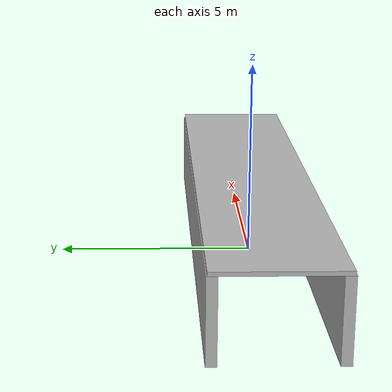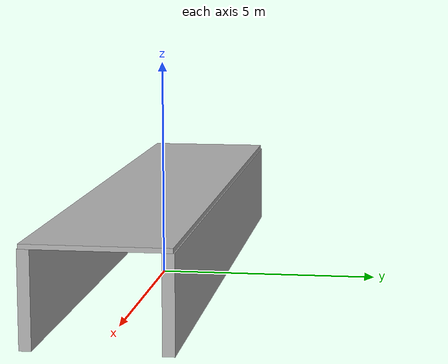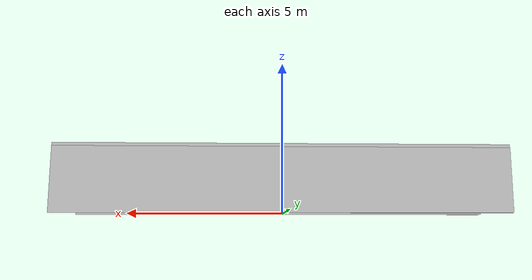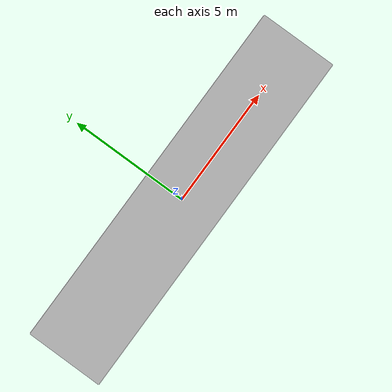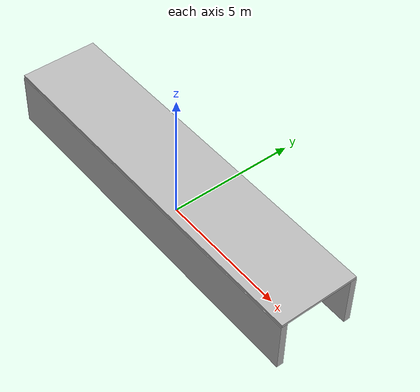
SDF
<?xml version="1.0"?>
<sdf version="1.6">
  <model name="MIT_Tunnel">
    <static>true</static>
    <link name="left_wall">
      <pose>0 -1.4 1 0 0 0</pose>
      <collision name="collision"><geometry><box><size>14 0.25 2</size></box></geometry></collision>
      <visual name="visual"><geometry><box><size>14 0.25 2</size></box></geometry></visual>
    </link>
    <link name="right_wall">
      <pose>0 1.4 1 0 0 0</pose>
      <collision name="collision"><geometry><box><size>14 0.25 2</size></box></geometry></collision>
      <visual name="visual"><geometry><box><size>14 0.25 2</size></box></geometry></visual>
    </link>
    <link name="roof">
      <pose>0 0 2.05 0 0 0</pose>
      <collision name="collision"><geometry><box><size>14 3.0 0.1</size></box></geometry></collision>
      <visual name="visual"><geometry><box><size>14 3.0 0.1</size></box></geometry></visual>
    </link>
  </model>
</sdf>
